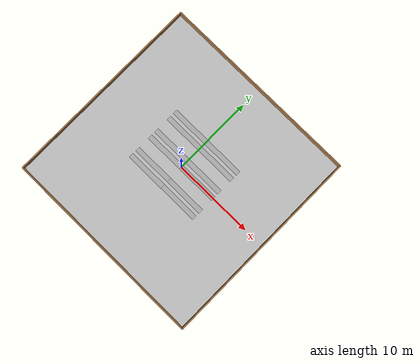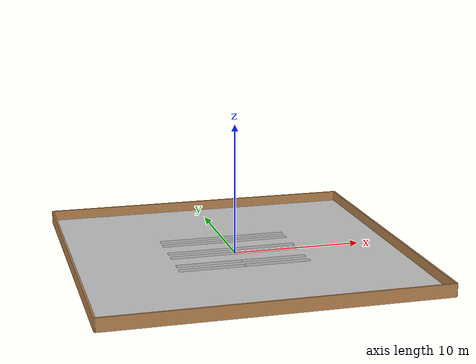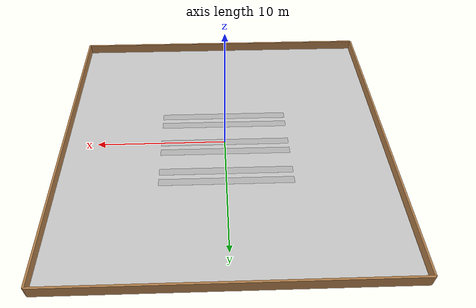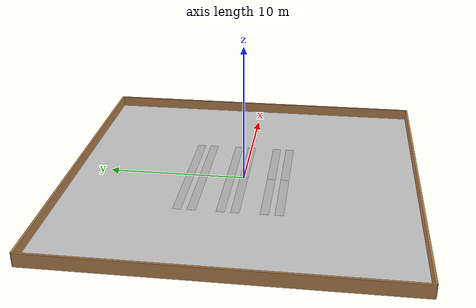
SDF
<sdf version='1.6'>
  <world name='default'>

    <gui fullscreen='0'>
      <camera name='user_camera'>
        <pose frame=''>0.0 0.0 15.7465 0.0 1.57 0.0</pose>
        <view_controller>orbit</view_controller>
        <projection_type>perspective</projection_type>
      </camera>
    </gui>

    <include>
      <uri>model://sun</uri>
    </include>
    <include>
      <uri>model://cmp9767m_ground_3</uri>
    </include>
    <include>
      <uri>model://cmp9767m_cropweed</uri>
      <pose>-2.5 -3.0 0 0 0 0</pose>
      <name>row_1</name>
    </include>
    <include>
      <uri>model://cmp9767m_cropweed</uri>
      <pose>2.5 -3.0 0 0 0 0</pose>
      <name>row_2</name>
    </include>
    <include>
      <uri>model://cmp9767m_cropweed</uri>
      <pose>-2.5 -2.0 0 0 0 0</pose>
      <name>row_3</name>
    </include>
    <include>
      <uri>model://cmp9767m_cropweed</uri>
      <pose>2.5 -2.0 0 0 0 0</pose>
      <name>row_4</name>
    </include>
    <include>
      <uri>model://cmp9767m_enclosure</uri>
    </include>
    <physics type="ode">
        <real_time_update_rate>200</real_time_update_rate>
        <real_time_factor>1</real_time_factor>
        <max_step_size>0.005</max_step_size>
    </physics>
    <gravity>0 0 -9.8</gravity>
  </world>
</sdf>

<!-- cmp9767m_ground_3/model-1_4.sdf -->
<sdf version="1.4">
<model name="cmp9767m_ground_3">
  <static>true</static>
    <link name="dirt">
      <collision name="collision">
        <geometry>
          <plane>
            <normal>0 0 1</normal>
            <size>25 25</size>
          </plane>
        </geometry>
        <surface>
          <friction>
            <ode>
              <mu>Inf</mu>
              <mu2>Inf</mu2>
            </ode>
          </friction>
        </surface>
      </collision>
      <visual name="visual">
        <cast_shadows>false</cast_shadows>
        <geometry>
          <plane>
            <normal>0 0 1</normal>
            <size>25 25</size>
          </plane>
        </geometry>
        <material>
          <script>
            <uri>model://cmp9767m_ground_3/materials/scripts</uri>
            <uri>model://cmp9767m_ground_3/materials/textures</uri>
            <name>cmp9767m_ground_3/dirt</name>
          </script>
        </material>
      </visual>
    </link>
  </model>
</sdf>

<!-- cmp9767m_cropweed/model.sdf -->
<sdf version="1.4">
  <model name="cmp9767m_cropweed">
  <static>true</static>
    <link name="simple">
      <pose frame=''>0 0 0 0 0 0</pose>
      <collision name="collision">
        <geometry>
          <plane>
            <normal>0 0 1</normal>
            <size>5.04 0.6</size>
          </plane>
        </geometry>
        <surface>
          <friction>
            <ode>
              <mu>100</mu>
              <mu2>50</mu2>
            </ode>
          </friction>
        </surface>
      </collision>
      <visual name="visual">
	     <pose>0 0 0.01 0 0 0</pose>
        <cast_shadows>false</cast_shadows>
        <geometry>
          <plane>
            <normal>0 0 1</normal>
            <size>5.04 0.6</size>
          </plane>
        </geometry>
        <material>
          <script>
            <uri>model://cmp9767m_cropweed/materials/scripts</uri>
            <uri>model://cmp9767m_cropweed/materials/textures</uri>
            <name>cmp9767m_cropweed/simple</name>
          </script>
        </material>
      </visual>
    </link>
    <link name="realeasy">
      <pose frame=''>0 3 0 0 0 0</pose>
      <collision name="collision">
        <geometry>
          <plane>
            <normal>0 0 1</normal>
            <size>5.04 0.6</size>
          </plane>
        </geometry>
        <surface>
          <friction>
            <ode>
              <mu>100</mu>
              <mu2>50</mu2>
            </ode>
          </friction>
        </surface>
      </collision>
      <visual name="visual">
	     <pose>0 0 0.01 0 0 0</pose>
        <cast_shadows>false</cast_shadows>
        <geometry>
          <plane>
            <normal>0 0 1</normal>
            <size>5.04 0.6</size>
          </plane>
        </geometry>
        <material>
          <script>
            <uri>model://cmp9767m_cropweed/materials/scripts</uri>
            <uri>model://cmp9767m_cropweed/materials/textures</uri>
            <name>cmp9767m_cropweed/realeasy</name>
          </script>
        </material>
      </visual>
    </link>
    <link name="realhard">
      <pose frame=''>0 6 0 0 0 0</pose>
      <collision name="collision">
        <geometry>
          <plane>
            <normal>0 0 1</normal>
            <size>5.04 0.6</size>
          </plane>
        </geometry>
        <surface>
          <friction>
            <ode>
              <mu>100</mu>
              <mu2>50</mu2>
            </ode>
          </friction>
        </surface>
      </collision>
      <visual name="visual">
	     <pose>0 0 0.01 0 0 0</pose>
        <cast_shadows>false</cast_shadows>
        <geometry>
          <plane>
            <normal>0 0 1</normal>
            <size>5.04 0.6</size>
          </plane>
        </geometry>
        <material>
          <script>
            <uri>model://cmp9767m_cropweed/materials/scripts</uri>
            <uri>model://cmp9767m_cropweed/materials/textures</uri>
            <name>cmp9767m_cropweed/realhard</name>
          </script>
        </material>
      </visual>
    </link>

  </model>
</sdf>

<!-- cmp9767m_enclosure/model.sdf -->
<sdf version='1.6'>
  <model name='cmp9767m_enclosure'>
    <link name='Wall_0'>
      <pose frame=''>0 12.5 0 0 -0 0</pose>
      <self_collide>0</self_collide>
      <enable_wind>0</enable_wind>
      <kinematic>0</kinematic>
      <gravity>1</gravity>
      <inertial>
        <mass>1</mass>
        <pose frame=''>0 0 0 0 -0 0</pose>
        <inertia>
          <ixx>1</ixx>
          <ixy>0</ixy>
          <ixz>0</ixz>
          <iyy>1</iyy>
          <iyz>0</iyz>
          <izz>1</izz>
        </inertia>
      </inertial>
      <visual name='Wall_0_Visual'>
        <pose frame=''>0 0 0.25 0 -0 0</pose>
        <geometry>
          <box>
            <size>25.0 0.15 1.0</size>
          </box>
        </geometry>
        <material>
          <script>
            <uri>file://media/materials/scripts/gazebo.material</uri>
            <name>Gazebo/Wood</name>
          </script>
          <ambient>1 1 1 1</ambient>
          <shader type='pixel'>
            <normal_map>__default__</normal_map>
          </shader>
          <diffuse>1 1 1 1</diffuse>
          <specular>0.2 0.2 0.2 1</specular>
          <emissive>0 0 0 1</emissive>
        </material>
        <meta>
          <layer>0</layer>
        </meta>
        <transparency>0</transparency>
        <cast_shadows>1</cast_shadows>
      </visual>
      <collision name='Wall_0_Collision'>
        <laser_retro>0</laser_retro>
        <max_contacts>10</max_contacts>
        <pose frame=''>0 0 0.25 0 -0 0</pose>
        <geometry>
          <box>
            <size>25.0 0.15 1.0</size>
          </box>
        </geometry>
        <surface>
          <friction>
            <ode>
              <mu>1</mu>
              <mu2>1</mu2>
              <fdir1>0 0 0</fdir1>
              <slip1>0</slip1>
              <slip2>0</slip2>
            </ode>
            <torsional>
              <coefficient>1</coefficient>
              <patch_radius>0</patch_radius>
              <surface_radius>0</surface_radius>
              <use_patch_radius>1</use_patch_radius>
              <ode>
                <slip>0</slip>
              </ode>
            </torsional>
          </friction>
          <bounce>
            <restitution_coefficient>0</restitution_coefficient>
            <threshold>1e+06</threshold>
          </bounce>
          <contact>
            <collide_without_contact>0</collide_without_contact>
            <collide_without_contact_bitmask>1</collide_without_contact_bitmask>
            <collide_bitmask>1</collide_bitmask>
            <ode>
              <soft_cfm>0</soft_cfm>
              <soft_erp>0.2</soft_erp>
              <kp>1e+13</kp>
              <kd>1</kd>
              <max_vel>0.01</max_vel>
              <min_depth>0</min_depth>
            </ode>
            <bullet>
              <split_impulse>1</split_impulse>
              <split_impulse_penetration_threshold>-0.01</split_impulse_penetration_threshold>
              <soft_cfm>0</soft_cfm>
              <soft_erp>0.2</soft_erp>
              <kp>1e+13</kp>
              <kd>1</kd>
            </bullet>
          </contact>
        </surface>
      </collision>
    </link>
    <link name='Wall_1'>
      <pose frame=''>0 -12.5 0 0 -0 0</pose>
      <self_collide>0</self_collide>
      <enable_wind>0</enable_wind>
      <kinematic>0</kinematic>
      <gravity>1</gravity>
      <inertial>
        <mass>1</mass>
        <pose frame=''>0 0 0 0 -0 0</pose>
        <inertia>
          <ixx>1</ixx>
          <ixy>0</ixy>
          <ixz>0</ixz>
          <iyy>1</iyy>
          <iyz>0</iyz>
          <izz>1</izz>
        </inertia>
      </inertial>
      <visual name='Wall_1_Visual'>
        <pose frame=''>0 0 0.25 0 -0 0</pose>
        <geometry>
          <box>
            <size>25.0 0.15 1.0</size>
          </box>
        </geometry>
        <material>
          <script>
            <uri>file://media/materials/scripts/gazebo.material</uri>
            <name>Gazebo/Wood</name>
          </script>
          <ambient>1 1 1 1</ambient>
          <shader type='pixel'>
            <normal_map>__default__</normal_map>
          </shader>
          <diffuse>1 1 1 1</diffuse>
          <specular>0.2 0.2 0.2 1</specular>
          <emissive>0 0 0 1</emissive>
        </material>
        <meta>
          <layer>0</layer>
        </meta>
        <transparency>0</transparency>
        <cast_shadows>1</cast_shadows>
      </visual>
      <collision name='Wall_1_Collision'>
        <laser_retro>0</laser_retro>
        <max_contacts>10</max_contacts>
        <pose frame=''>0 0 0.25 0 -0 0</pose>
        <geometry>
          <box>
            <size>25.0 0.15 1.0</size>
          </box>
        </geometry>
        <surface>
          <friction>
            <ode>
              <mu>1</mu>
              <mu2>1</mu2>
              <fdir1>0 0 0</fdir1>
              <slip1>0</slip1>
              <slip2>0</slip2>
            </ode>
            <torsional>
              <coefficient>1</coefficient>
              <patch_radius>0</patch_radius>
              <surface_radius>0</surface_radius>
              <use_patch_radius>1</use_patch_radius>
              <ode>
                <slip>0</slip>
              </ode>
            </torsional>
          </friction>
          <bounce>
            <restitution_coefficient>0</restitution_coefficient>
            <threshold>1e+06</threshold>
          </bounce>
          <contact>
            <collide_without_contact>0</collide_without_contact>
            <collide_without_contact_bitmask>1</collide_without_contact_bitmask>
            <collide_bitmask>1</collide_bitmask>
            <ode>
              <soft_cfm>0</soft_cfm>
              <soft_erp>0.2</soft_erp>
              <kp>1e+13</kp>
              <kd>1</kd>
              <max_vel>0.01</max_vel>
              <min_depth>0</min_depth>
            </ode>
            <bullet>
              <split_impulse>1</split_impulse>
              <split_impulse_penetration_threshold>-0.01</split_impulse_penetration_threshold>
              <soft_cfm>0</soft_cfm>
              <soft_erp>0.2</soft_erp>
              <kp>1e+13</kp>
              <kd>1</kd>
            </bullet>
          </contact>
        </surface>
      </collision>
    </link>
    <link name='Wall_2'>
      <pose frame=''>-12.5 0 0 0 -0 1.57</pose>
      <self_collide>0</self_collide>
      <enable_wind>0</enable_wind>
      <kinematic>0</kinematic>
      <gravity>1</gravity>
      <inertial>
        <mass>1</mass>
        <pose frame=''>0 0 0 0 -0 0</pose>
        <inertia>
          <ixx>1</ixx>
          <ixy>0</ixy>
          <ixz>0</ixz>
          <iyy>1</iyy>
          <iyz>0</iyz>
          <izz>1</izz>
        </inertia>
      </inertial>
      <visual name='Wall_2_Visual'>
        <pose frame=''>0 0 0.25 0 -0 0</pose>
        <geometry>
          <box>
            <size>25.0 0.15 1.0</size>
          </box>
        </geometry>
        <material>
          <script>
            <uri>file://media/materials/scripts/gazebo.material</uri>
            <name>Gazebo/Wood</name>
          </script>
          <ambient>1 1 1 1</ambient>
          <shader type='pixel'>
            <normal_map>__default__</normal_map>
          </shader>
          <diffuse>1 1 1 1</diffuse>
          <specular>0.2 0.2 0.2 1</specular>
          <emissive>0 0 0 1</emissive>
        </material>
        <meta>
          <layer>0</layer>
        </meta>
        <transparency>0</transparency>
        <cast_shadows>1</cast_shadows>
      </visual>
      <collision name='Wall_2_Collision'>
        <laser_retro>0</laser_retro>
        <max_contacts>10</max_contacts>
        <pose frame=''>0 0 0.25 0 -0 0</pose>
        <geometry>
          <box>
            <size>25.0 0.15 1.0</size>
          </box>
        </geometry>
        <surface>
          <friction>
            <ode>
              <mu>1</mu>
              <mu2>1</mu2>
              <fdir1>0 0 0</fdir1>
              <slip1>0</slip1>
              <slip2>0</slip2>
            </ode>
            <torsional>
              <coefficient>1</coefficient>
              <patch_radius>0</patch_radius>
              <surface_radius>0</surface_radius>
              <use_patch_radius>1</use_patch_radius>
              <ode>
                <slip>0</slip>
              </ode>
            </torsional>
          </friction>
          <bounce>
            <restitution_coefficient>0</restitution_coefficient>
            <threshold>1e+06</threshold>
          </bounce>
          <contact>
            <collide_without_contact>0</collide_without_contact>
            <collide_without_contact_bitmask>1</collide_without_contact_bitmask>
            <collide_bitmask>1</collide_bitmask>
            <ode>
              <soft_cfm>0</soft_cfm>
              <soft_erp>0.2</soft_erp>
              <kp>1e+13</kp>
              <kd>1</kd>
              <max_vel>0.01</max_vel>
              <min_depth>0</min_depth>
            </ode>
            <bullet>
              <split_impulse>1</split_impulse>
              <split_impulse_penetration_threshold>-0.01</split_impulse_penetration_threshold>
              <soft_cfm>0</soft_cfm>
              <soft_erp>0.2</soft_erp>
              <kp>1e+13</kp>
              <kd>1</kd>
            </bullet>
          </contact>
        </surface>
      </collision>
    </link>
    <link name='Wall_3'>
      <pose frame=''>12.5 0 0 0 -0 1.57</pose>
      <self_collide>0</self_collide>
      <enable_wind>0</enable_wind>
      <kinematic>0</kinematic>
      <gravity>1</gravity>
      <inertial>
        <mass>1</mass>
        <pose frame=''>0 0 0 0 -0 0</pose>
        <inertia>
          <ixx>1</ixx>
          <ixy>0</ixy>
          <ixz>0</ixz>
          <iyy>1</iyy>
          <iyz>0</iyz>
          <izz>1</izz>
        </inertia>
      </inertial>
      <visual name='Wall_3_Visual'>
        <pose frame=''>0 0 0.25 0 -0 0</pose>
        <geometry>
          <box>
            <size>25.0 0.15 1.0</size>
          </box>
        </geometry>
        <material>
          <script>
            <uri>file://media/materials/scripts/gazebo.material</uri>
            <name>Gazebo/Wood</name>
          </script>
          <ambient>1 1 1 1</ambient>
          <shader type='pixel'>
            <normal_map>__default__</normal_map>
          </shader>
          <diffuse>1 1 1 1</diffuse>
          <specular>0.2 0.2 0.2 1</specular>
          <emissive>0 0 0 1</emissive>
        </material>
        <meta>
          <layer>0</layer>
        </meta>
        <transparency>0</transparency>
        <cast_shadows>1</cast_shadows>
      </visual>
      <collision name='Wall_3_Collision'>
        <laser_retro>0</laser_retro>
        <max_contacts>10</max_contacts>
        <pose frame=''>0 0 0.25 0 -0 0</pose>
        <geometry>
          <box>
            <size>25.0 0.15 1.0</size>
          </box>
        </geometry>
        <surface>
          <friction>
            <ode>
              <mu>1</mu>
              <mu2>1</mu2>
              <fdir1>0 0 0</fdir1>
              <slip1>0</slip1>
              <slip2>0</slip2>
            </ode>
            <torsional>
              <coefficient>1</coefficient>
              <patch_radius>0</patch_radius>
              <surface_radius>0</surface_radius>
              <use_patch_radius>1</use_patch_radius>
              <ode>
                <slip>0</slip>
              </ode>
            </torsional>
          </friction>
          <bounce>
            <restitution_coefficient>0</restitution_coefficient>
            <threshold>1e+06</threshold>
          </bounce>
          <contact>
            <collide_without_contact>0</collide_without_contact>
            <collide_without_contact_bitmask>1</collide_without_contact_bitmask>
            <collide_bitmask>1</collide_bitmask>
            <ode>
              <soft_cfm>0</soft_cfm>
              <soft_erp>0.2</soft_erp>
              <kp>1e+13</kp>
              <kd>1</kd>
              <max_vel>0.01</max_vel>
              <min_depth>0</min_depth>
            </ode>
            <bullet>
              <split_impulse>1</split_impulse>
              <split_impulse_penetration_threshold>-0.01</split_impulse_penetration_threshold>
              <soft_cfm>0</soft_cfm>
              <soft_erp>0.2</soft_erp>
              <kp>1e+13</kp>
              <kd>1</kd>
            </bullet>
          </contact>
        </surface>
      </collision>
    </link>
    <static>1</static>
    <allow_auto_disable>1</allow_auto_disable>
  </model>
</sdf>
